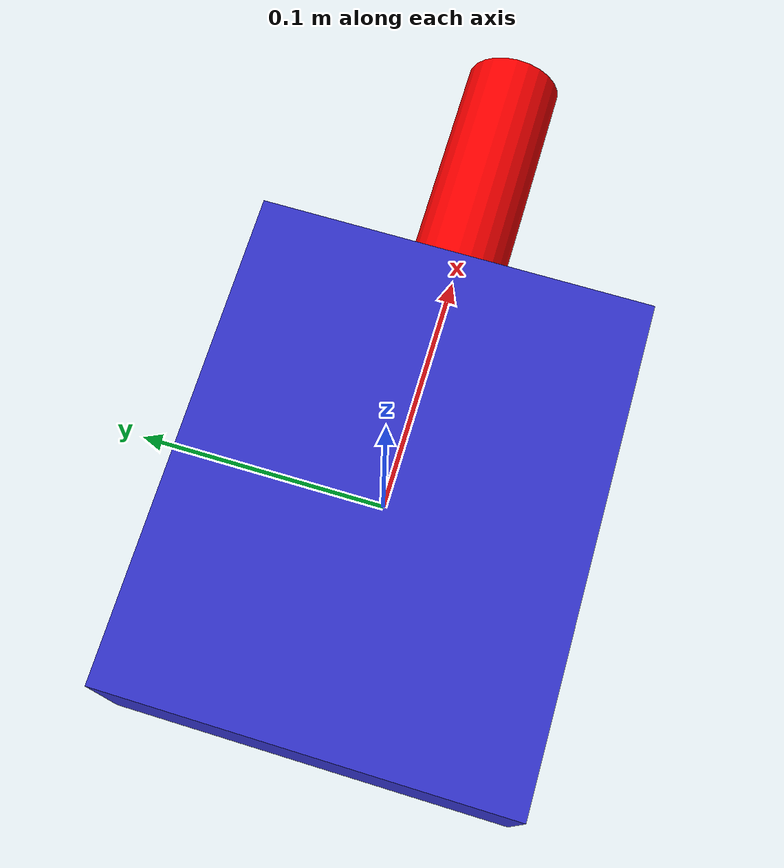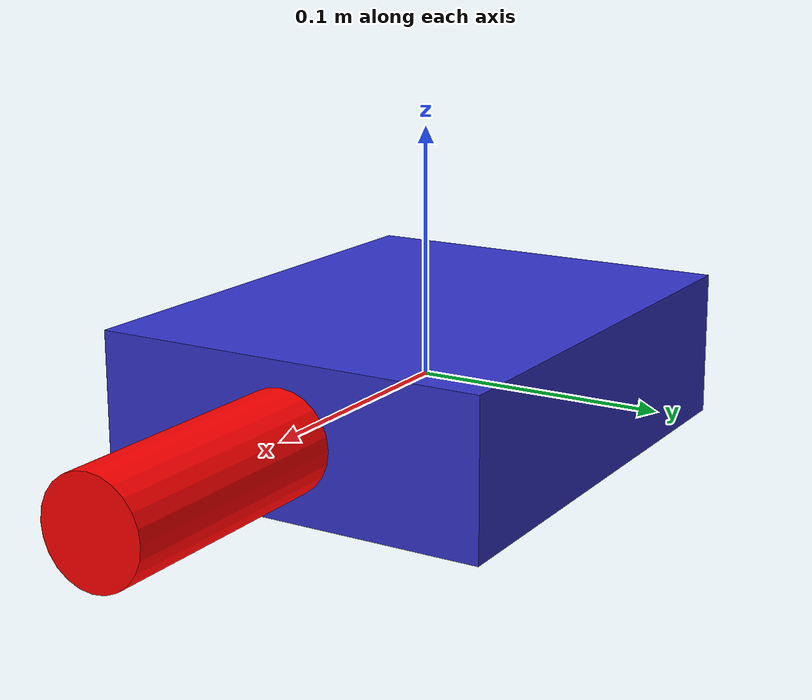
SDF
<?xml version="1.0" ?>
<sdf version="1.6">
  <model name="simple_hexapod">
    <!-- Main body -->
    <link name="body">
      <pose>0 0 0 0 0 0</pose>
      <inertial>
        <mass>2.0</mass>
        <inertia>
          <ixx>0.1</ixx>
          <iyy>0.1</iyy>
          <izz>0.1</izz>
        </inertia>
      </inertial>
      <visual name="body_visual">
        <geometry>
          <box>
            <size>0.20 0.16 0.06</size>
          </box>
        </geometry>
        <material>
          <ambient>0.2 0.2 0.8 1</ambient>
          <diffuse>0.2 0.2 0.8 1</diffuse>
        </material>
      </visual>
      <collision name="body_collision">
        <geometry>
          <box>
            <size>0.20 0.16 0.06</size>
          </box>
        </geometry>
      </collision>
    </link>

    <!-- Right Leg - Extends horizontally to the right -->
    <link name="right_leg">
      <pose>0 0 0 0 0 0</pose>  <!-- Relative to joint -->
      <inertial>
        <mass>0.2</mass>
        <inertia>
          <ixx>0.002</ixx>
          <iyy>0.002</iyy>
          <izz>0.002</izz>
        </inertia>
      </inertial>
      <visual name="leg_visual">
        <pose>0.10 0 0 0 1.5708 0</pose>  <!-- 10cm outward, rotated to horizontal -->
        <geometry>
          <cylinder>
            <radius>0.02</radius>
            <length>0.20</length>
          </cylinder>
        </geometry>
        <material>
          <ambient>1 0 0 1</ambient>  <!-- Bright red -->
          <diffuse>1 0 0 1</diffuse>
        </material>
      </visual>
    </link>

    <joint name="right_joint" type="revolute">
      <parent>body</parent>
      <child>right_leg</child>
      <pose>0 -0.10 0 0 0 0</pose>  <!-- Joint at RIGHT side of body -->
      <axis>
        <xyz>0 0 1</xyz>  <!-- Rotate around vertical axis -->
        <limit>
          <lower>-1.57</lower>
          <upper>1.57</upper>
        </limit>
      </axis>
    </joint>

    <!-- Left Leg - Extends horizontally to the left -->
    <link name="left_leg">
      <pose>0 0 0 0 0 0</pose>  <!-- Relative to joint -->
      <inertial>
        <mass>0.2</mass>
        <inertia>
          <ixx>0.002</ixx>
          <iyy>0.002</iyy>
          <izz>0.002</izz>
        </inertia>
      </inertial>
      <visual name="leg_visual">
        <pose>0.10 0 0 0 1.5708 0</pose>  <!-- 10cm outward, rotated to horizontal -->
        <geometry>
          <cylinder>
            <radius>0.02</radius>
            <length>0.20</length>
          </cylinder>
        </geometry>
        <material>
          <ambient>0 1 0 1</ambient>  <!-- Bright green -->
          <diffuse>0 1 0 1</diffuse>
        </material>
      </visual>
    </link>

    <joint name="left_joint" type="revolute">
      <parent>body</parent>
      <child>left_leg</child>
      <pose>0 0.10 0 0 0 0</pose>  <!-- Joint at LEFT side of body -->
      <axis>
        <xyz>0 0 1</xyz>  <!-- Rotate around vertical axis -->
        <limit>
          <lower>-1.57</lower>
          <upper>1.57</upper>
        </limit>
      </axis>
    </joint>

    <!-- ArduPilot Plugin for servo control -->
    <plugin filename="gz-sim-ardupilot-plugin-system" name="gz::sim::systems::ArduPilotPlugin">
      <fdm_addr>127.0.0.1</fdm_addr>
      <fdm_port_in>9002</fdm_port_in>
      <fdm_port_out>9003</fdm_port_out>
      <modelXYZToAirplaneXForwardZDown>0 0 0 3.141592653589793 0 0</modelXYZToAirplaneXForwardZDown>
      <gazeboXYZToNED>0 0 0 3.141592653589793 0 0</gazeboXYZToNED>

      <control channel="0">
        <jointName>right_joint</jointName>
        <servo_min>1000</servo_min>
        <servo_max>2000</servo_max>
        <type>POSITION</type>
        <p_gain>10.0</p_gain>
        <i_gain>0</i_gain>
        <d_gain>0</d_gain>
        <i_max>0</i_max>
        <i_min>0</i_min>
        <cmd_max>2.0</cmd_max>
        <cmd_min>-2.0</cmd_min>
      </control>

      <control channel="1">
        <jointName>left_joint</jointName>
        <servo_min>1000</servo_min>
        <servo_max>2000</servo_max>
        <type>POSITION</type>
        <p_gain>10.0</p_gain>
        <i_gain>0</i_gain>
        <d_gain>0</d_gain>
        <i_max>0</i_max>
        <i_min>0</i_min>
        <cmd_max>2.0</cmd_max>
        <cmd_min>-2.0</cmd_min>
      </control>
    </plugin>

  </model>
</sdf>
